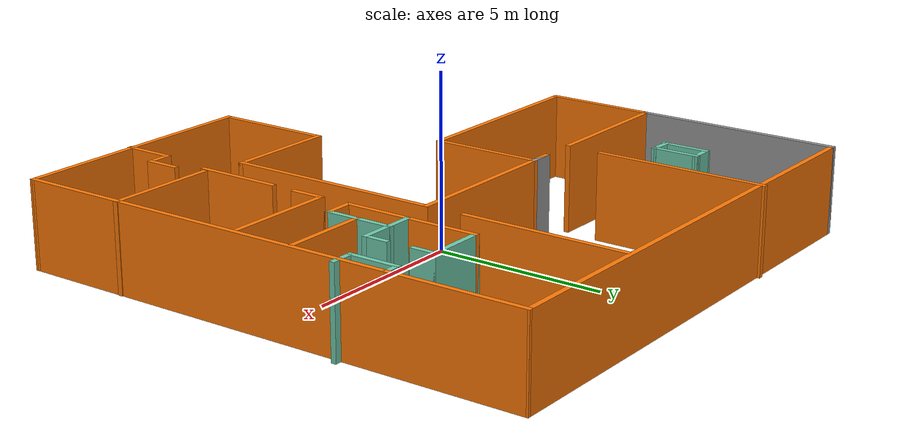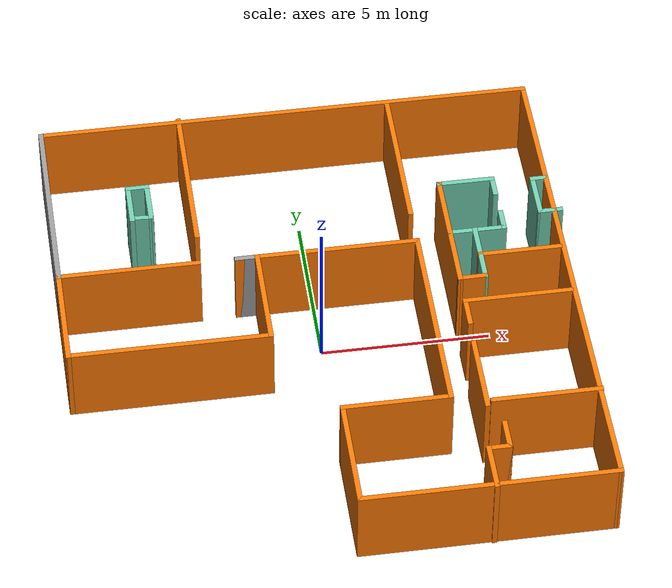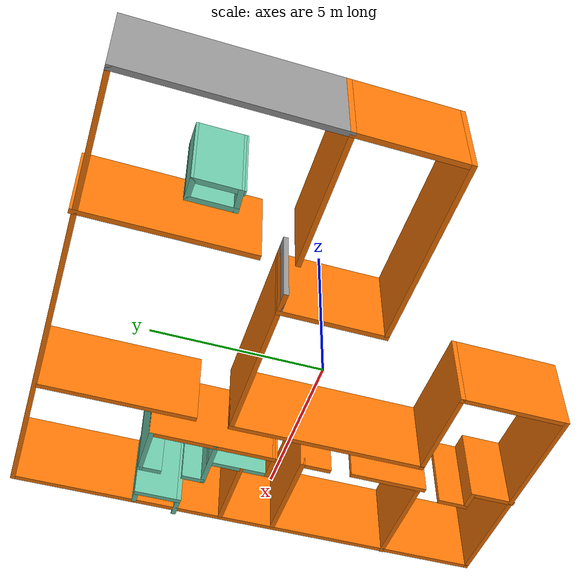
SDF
<?xml version='1.0'?>
<sdf version='1.6'>
  <model name='Home2'>
    <pose frame=''>-0.003197 0.047141 0 0 -0 0</pose>
    <link name='Wall_0'>
      <collision name='Wall_0_Collision'>
        <geometry>
          <box>
            <size>6 0.15 2.5</size>
          </box>
        </geometry>
        <pose frame=''>0 0 1.25 0 -0 0</pose>
      </collision>
      <visual name='Wall_0_Visual'>
        <pose frame=''>0 0 1.25 0 -0 0</pose>
        <geometry>
          <box>
            <size>6 0.15 2.5</size>
          </box>
        </geometry>
        <material>
          <script>
            <uri>file://media/materials/scripts/gazebo.material</uri>
            <name>Gazebo/Grey</name>
          </script>
          <ambient>1 1 1 1</ambient>
        </material>
      </visual>
      <pose frame=''>-7.50279 4.70654 0 0 -0 1.5708</pose>
    </link>
    <link name='Wall_1'>
      <collision name='Wall_1_Collision'>
        <geometry>
          <box>
            <size>0.16 0.15 2.5</size>
          </box>
        </geometry>
        <pose frame=''>0 0 1.25 0 -0 0</pose>
      </collision>
      <visual name='Wall_1_Visual'>
        <pose frame=''>0 0 1.25 0 -0 0</pose>
        <geometry>
          <box>
            <size>0.16 0.15 2.5</size>
          </box>
        </geometry>
        <material>
          <script>
            <uri>file://media/materials/scripts/gazebo.material</uri>
            <name>Gazebo/Grey</name>
          </script>
          <ambient>1 1 1 1</ambient>
        </material>
      </visual>
      <pose frame=''>-7.49779 7.63154 0 0 -0 0</pose>
    </link>
    <link name='Wall_11'>
      <collision name='Wall_11_Collision'>
        <geometry>
          <box>
            <size>4.25 0.15 2.5</size>
          </box>
        </geometry>
        <pose frame=''>0 0 1.25 0 -0 0</pose>
      </collision>
      <visual name='Wall_11_Visual'>
        <pose frame=''>0 0 1.25 0 -0 0</pose>
        <geometry>
          <box>
            <size>4.25 0.15 2.5</size>
          </box>
        </geometry>
        <material>
          <script>
            <uri>file://media/materials/scripts/gazebo.material</uri>
            <name>Gazebo/Grey</name>
          </script>
          <ambient>0.996078 0.47451 0.0196078 1</ambient>
        </material>
      </visual>
      <pose frame=''>-5.4528 1.78154 0 0 -0 0</pose>
    </link>
    <link name='Wall_13'>
      <collision name='Wall_13_Collision'>
        <geometry>
          <box>
            <size>3.25 0.15 2.5</size>
          </box>
        </geometry>
        <pose frame=''>0 0 1.25 0 -0 0</pose>
      </collision>
      <visual name='Wall_13_Visual'>
        <pose frame=''>0 0 1.25 0 -0 0</pose>
        <geometry>
          <box>
            <size>3.25 0.15 2.5</size>
          </box>
        </geometry>
        <material>
          <script>
            <uri>file://media/materials/scripts/gazebo.material</uri>
            <name>Gazebo/Grey</name>
          </script>
          <ambient>0.996078 0.47451 0.0196078 1</ambient>
        </material>
      </visual>
      <pose frame=''>-7.50279 0.231541 0 0 0 -1.5708</pose>
    </link>
    <link name='Wall_16'>
      <collision name='Wall_16_Collision'>
        <geometry>
          <box>
            <size>6 0.15 2.5</size>
          </box>
        </geometry>
        <pose frame=''>0 0 1.25 0 -0 0</pose>
      </collision>
      <visual name='Wall_16_Visual'>
        <pose frame=''>0 0 1.25 0 -0 0</pose>
        <geometry>
          <box>
            <size>6 0.15 2.5</size>
          </box>
        </geometry>
        <material>
          <script>
            <uri>file://media/materials/scripts/gazebo.material</uri>
            <name>Gazebo/Grey</name>
          </script>
          <ambient>0.996078 0.47451 0.0196078 1</ambient>
        </material>
      </visual>
      <pose frame=''>-4.5778 -1.31846 0 0 -0 0</pose>
    </link>
    <link name='Wall_17'>
      <collision name='Wall_17_Collision'>
        <geometry>
          <box>
            <size>3.25 0.15 2.5</size>
          </box>
        </geometry>
        <pose frame=''>0 0 1.25 0 -0 0</pose>
      </collision>
      <visual name='Wall_17_Visual'>
        <pose frame=''>0 0 1.25 0 -0 0</pose>
        <geometry>
          <box>
            <size>3.25 0.15 2.5</size>
          </box>
        </geometry>
        <material>
          <script>
            <uri>file://media/materials/scripts/gazebo.material</uri>
            <name>Gazebo/Grey</name>
          </script>
          <ambient>0.996078 0.47451 0.0196078 1</ambient>
        </material>
      </visual>
      <pose frame=''>-1.6528 0.231541 0 0 -0 1.5708</pose>
    </link>
    <link name='Wall_18'>
      <collision name='Wall_18_Collision'>
        <geometry>
          <box>
            <size>0.75 0.15 2.5</size>
          </box>
        </geometry>
        <pose frame=''>0 0 1.25 0 -0 0</pose>
      </collision>
      <visual name='Wall_18_Visual'>
        <pose frame=''>0 0 1.25 0 -0 0</pose>
        <geometry>
          <box>
            <size>0.75 0.15 2.5</size>
          </box>
        </geometry>
        <material>
          <script>
            <uri>file://media/materials/scripts/gazebo.material</uri>
            <name>Gazebo/Grey</name>
          </script>
          <ambient>1 1 1 1</ambient>
        </material>
      </visual>
      <pose frame=''>-1.9528 1.78154 0 0 -0 3.14159</pose>
    </link>
    <link name='Wall_19'>
      <collision name='Wall_19_Collision'>
        <geometry>
          <box>
            <size>5.5 0.15 2.5</size>
          </box>
        </geometry>
        <pose frame=''>0 0 1.25 0 -0 0</pose>
      </collision>
      <visual name='Wall_19_Visual'>
        <pose frame=''>0 0 1.25 0 -0 0</pose>
        <geometry>
          <box>
            <size>5.5 0.15 2.5</size>
          </box>
        </geometry>
        <material>
          <script>
            <uri>file://media/materials/scripts/gazebo.material</uri>
            <name>Gazebo/Grey</name>
          </script>
          <ambient>0.996078 0.47451 0.0196078 1</ambient>
        </material>
      </visual>
      <pose frame=''>0.422205 1.78154 0 0 -0 0</pose>
    </link>
    <link name='Wall_20'>
      <collision name='Wall_20_Collision'>
        <geometry>
          <box>
            <size>6.25 0.15 2.5</size>
          </box>
        </geometry>
        <pose frame=''>0 0 1.25 0 -0 0</pose>
      </collision>
      <visual name='Wall_20_Visual'>
        <pose frame=''>0 0 1.25 0 -0 0</pose>
        <geometry>
          <box>
            <size>6.25 0.15 2.5</size>
          </box>
        </geometry>
        <material>
          <script>
            <uri>file://media/materials/scripts/gazebo.material</uri>
            <name>Gazebo/Grey</name>
          </script>
          <ambient>0.996078 0.47451 0.0196078 1</ambient>
        </material>
      </visual>
      <pose frame=''>3.09721 -1.26846 0 0 0 -1.5708</pose>
    </link>
    <link name='Wall_21'>
      <collision name='Wall_21_Collision'>
        <geometry>
          <box>
            <size>3.25 0.15 2.5</size>
          </box>
        </geometry>
        <pose frame=''>0 0 1.25 0 -0 0</pose>
      </collision>
      <visual name='Wall_21_Visual'>
        <pose frame=''>0 0 1.25 0 -0 0</pose>
        <geometry>
          <box>
            <size>3.25 0.15 2.5</size>
          </box>
        </geometry>
        <material>
          <script>
            <uri>file://media/materials/scripts/gazebo.material</uri>
            <name>Gazebo/Grey</name>
          </script>
          <ambient>0.996078 0.47451 0.0196078 1</ambient>
        </material>
      </visual>
      <pose frame=''>1.5472 -4.31846 0 0 -0 3.14159</pose>
    </link>
    <link name='Wall_22'>
      <collision name='Wall_22_Collision'>
        <geometry>
          <box>
            <size>3.5 0.15 2.5</size>
          </box>
        </geometry>
        <pose frame=''>0 0 1.25 0 -0 0</pose>
      </collision>
      <visual name='Wall_22_Visual'>
        <pose frame=''>0 0 1.25 0 -0 0</pose>
        <geometry>
          <box>
            <size>3.5 0.15 2.5</size>
          </box>
        </geometry>
        <material>
          <script>
            <uri>file://media/materials/scripts/gazebo.material</uri>
            <name>Gazebo/Grey</name>
          </script>
          <ambient>0.996078 0.47451 0.0196078 1</ambient>
        </material>
      </visual>
      <pose frame=''>-0.002795 -5.99346 0 0 0 -1.5708</pose>
    </link>
    <link name='Wall_23'>
      <collision name='Wall_23_Collision'>
        <geometry>
          <box>
            <size>7.5 0.15 2.5</size>
          </box>
        </geometry>
        <pose frame=''>0 0 1.25 0 -0 0</pose>
      </collision>
      <visual name='Wall_23_Visual'>
        <pose frame=''>0 0 1.25 0 -0 0</pose>
        <geometry>
          <box>
            <size>7.5 0.15 2.5</size>
          </box>
        </geometry>
        <material>
          <script>
            <uri>file://media/materials/scripts/gazebo.material</uri>
            <name>Gazebo/Grey</name>
          </script>
          <ambient>0.996078 0.47451 0.0196078 1</ambient>
        </material>
      </visual>
      <pose frame=''>3.6722 -7.66846 0 0 -0 0</pose>
    </link>
    <link name='Wall_24'>
      <collision name='Wall_24_Collision'>
        <geometry>
          <box>
            <size>15.4501 0.15 2.5</size>
          </box>
        </geometry>
        <pose frame=''>0 0 1.25 0 -0 0</pose>
      </collision>
      <visual name='Wall_24_Visual'>
        <pose frame=''>0 0 1.25 0 -0 0</pose>
        <geometry>
          <box>
            <size>15.4501 0.15 2.5</size>
          </box>
        </geometry>
        <material>
          <script>
            <uri>file://media/materials/scripts/gazebo.material</uri>
            <name>Gazebo/Grey</name>
          </script>
          <ambient>0.996078 0.47451 0.0196078 1</ambient>
        </material>
      </visual>
      <pose frame=''>7.32221 -0.018459 0 0 -0 1.57406</pose>
    </link>
    <link name='Wall_26'>
      <collision name='Wall_26_Collision'>
        <geometry>
          <box>
            <size>1.5 0.15 2.5</size>
          </box>
        </geometry>
        <pose frame=''>0 0 1.25 0 -0 0</pose>
      </collision>
      <visual name='Wall_26_Visual'>
        <pose frame=''>0 0 1.25 0 -0 0</pose>
        <geometry>
          <box>
            <size>1.5 0.15 2.5</size>
          </box>
        </geometry>
        <material>
          <script>
            <uri>file://media/materials/scripts/gazebo.material</uri>
            <name>Gazebo/Grey</name>
          </script>
          <ambient>0.996078 0.47451 0.0196078 1</ambient>
        </material>
      </visual>
      <pose frame=''>3.83526 -7.03317 0 0 -0 1.5708</pose>
    </link>
    <link name='Wall_27'>
      <collision name='Wall_27_Collision'>
        <geometry>
          <box>
            <size>0.75 0.15 2.5</size>
          </box>
        </geometry>
        <pose frame=''>0 0 1.25 0 -0 0</pose>
      </collision>
      <visual name='Wall_27_Visual'>
        <pose frame=''>0 0 1.25 0 -0 0</pose>
        <geometry>
          <box>
            <size>0.75 0.15 2.5</size>
          </box>
        </geometry>
        <material>
          <script>
            <uri>file://media/materials/scripts/gazebo.material</uri>
            <name>Gazebo/Grey</name>
          </script>
          <ambient>0.996078 0.47451 0.0196078 1</ambient>
        </material>
      </visual>
      <pose frame=''>4.13526 -6.35817 0 0 -0 0</pose>
    </link>
    <link name='Wall_28'>
      <collision name='Wall_28_Collision'>
        <geometry>
          <box>
            <size>1 0.15 2.5</size>
          </box>
        </geometry>
        <pose frame=''>0 0 1.25 0 -0 0</pose>
      </collision>
      <visual name='Wall_28_Visual'>
        <pose frame=''>0 0 1.25 0 -0 0</pose>
        <geometry>
          <box>
            <size>1 0.15 2.5</size>
          </box>
        </geometry>
        <material>
          <script>
            <uri>file://media/materials/scripts/gazebo.material</uri>
            <name>Gazebo/Grey</name>
          </script>
          <ambient>0.996078 0.47451 0.0196078 1</ambient>
        </material>
      </visual>
      <pose frame=''>4.43526 -5.93317 0 0 -0 1.5708</pose>
    </link>
    <link name='Wall_30'>
      <collision name='Wall_30_Collision'>
        <geometry>
          <box>
            <size>3.25 0.15 2.5</size>
          </box>
        </geometry>
        <pose frame=''>0 0 1.25 0 -0 0</pose>
      </collision>
      <visual name='Wall_30_Visual'>
        <pose frame=''>0 0 1.25 0 -0 0</pose>
        <geometry>
          <box>
            <size>3.25 0.15 2.5</size>
          </box>
        </geometry>
        <material>
          <script>
            <uri>file://media/materials/scripts/gazebo.material</uri>
            <name>Gazebo/Grey</name>
          </script>
          <ambient>0.996078 0.47451 0.0196078 1</ambient>
        </material>
      </visual>
      <pose frame=''>5.8099 -4.62808 0 0 -0 3.14159</pose>
    </link>
    <link name='Wall_32'>
      <collision name='Wall_32_Collision'>
        <geometry>
          <box>
            <size>2.5 0.15 2.5</size>
          </box>
        </geometry>
        <pose frame=''>0 0 1.25 0 -0 0</pose>
      </collision>
      <visual name='Wall_32_Visual'>
        <pose frame=''>0 0 1.25 0 -0 0</pose>
        <geometry>
          <box>
            <size>2.5 0.15 2.5</size>
          </box>
        </geometry>
        <material>
          <script>
            <uri>file://media/materials/scripts/gazebo.material</uri>
            <name>Gazebo/Grey</name>
          </script>
          <ambient>0.996078 0.47451 0.0196078 1</ambient>
        </material>
      </visual>
      <pose frame=''>4.07341 -3.59621 0 0 0 -1.5708</pose>
    </link>
    <link name='Wall_34'>
      <collision name='Wall_34_Collision'>
        <geometry>
          <box>
            <size>1 0.15 2.5</size>
          </box>
        </geometry>
        <pose frame=''>0 0 1.25 0 -0 0</pose>
      </collision>
      <visual name='Wall_34_Visual'>
        <pose frame=''>0 0 1.25 0 -0 0</pose>
        <geometry>
          <box>
            <size>1 0.15 2.5</size>
          </box>
        </geometry>
        <material>
          <script>
            <uri>file://media/materials/scripts/gazebo.material</uri>
            <name>Gazebo/Grey</name>
          </script>
          <ambient>0.996078 0.47451 0.0196078 1</ambient>
        </material>
      </visual>
      <pose frame=''>4.10517 -1.20237 0 0 -0 1.5708</pose>
    </link>
    <link name='Wall_35'>
      <collision name='Wall_35_Collision'>
        <geometry>
          <box>
            <size>3.25 0.15 2.5</size>
          </box>
        </geometry>
        <pose frame=''>0 0 1.25 0 -0 0</pose>
      </collision>
      <visual name='Wall_35_Visual'>
        <pose frame=''>0 0 1.25 0 -0 0</pose>
        <geometry>
          <box>
            <size>3.25 0.15 2.5</size>
          </box>
        </geometry>
        <material>
          <script>
            <uri>file://media/materials/scripts/gazebo.material</uri>
            <name>Gazebo/Grey</name>
          </script>
          <ambient>0.996078 0.47451 0.0196078 1</ambient>
        </material>
      </visual>
      <pose frame=''>5.65517 -0.777369 0 0 -0 0</pose>
    </link>
    <link name='Wall_37'>
      <collision name='Wall_37_Collision'>
        <geometry>
          <box>
            <size>4 0.15 2.5</size>
          </box>
        </geometry>
        <pose frame=''>0 0 1.25 0 -0 0</pose>
      </collision>
      <visual name='Wall_37_Visual'>
        <pose frame=''>0 0 1.25 0 -0 0</pose>
        <geometry>
          <box>
            <size>4 0.15 2.5</size>
          </box>
        </geometry>
        <material>
          <script>
            <uri>file://media/materials/scripts/gazebo.material</uri>
            <name>Gazebo/Grey</name>
          </script>
          <ambient>0.996078 0.47451 0.0196078 1</ambient>
        </material>
      </visual>
      <pose frame=''>4.10517 2.04408 0 0 -0 1.5708</pose>
    </link>
    <link name='Wall_38'>
      <collision name='Wall_38_Collision'>
        <geometry>
          <box>
            <size>1.75 0.15 2.5</size>
          </box>
        </geometry>
        <pose frame=''>0 0 1.25 0 -0 0</pose>
      </collision>
      <visual name='Wall_38_Visual'>
        <pose frame=''>0 0 1.25 0 -0 0</pose>
        <geometry>
          <box>
            <size>1.75 0.15 2.5</size>
          </box>
        </geometry>
        <material>
          <script>
            <uri>file://media/materials/scripts/gazebo.material</uri>
            <name>Gazebo/Grey</name>
          </script>
          <ambient>0.435294 0.796078 0.67451 1</ambient>
        </material>
      </visual>
      <pose frame=''>4.90517 3.96908 0 0 -0 0</pose>
    </link>
    <link name='Wall_39'>
      <collision name='Wall_39_Collision'>
        <geometry>
          <box>
            <size>0.75 0.15 2.5</size>
          </box>
        </geometry>
        <pose frame=''>0 0 1.25 0 -0 0</pose>
      </collision>
      <visual name='Wall_39_Visual'>
        <pose frame=''>0 0 1.25 0 -0 0</pose>
        <geometry>
          <box>
            <size>0.75 0.15 2.5</size>
          </box>
        </geometry>
        <material>
          <script>
            <uri>file://media/materials/scripts/gazebo.material</uri>
            <name>Gazebo/Grey</name>
          </script>
          <ambient>0.435294 0.796078 0.67451 1</ambient>
        </material>
      </visual>
      <pose frame=''>5.70517 3.66908 0 0 0 -1.5708</pose>
    </link>
    <link name='Wall_4'>
      <collision name='Wall_4_Collision'>
        <geometry>
          <box>
            <size>6 0.15 2.5</size>
          </box>
        </geometry>
        <pose frame=''>0 0 1.25 0 -0 0</pose>
      </collision>
      <visual name='Wall_4_Visual'>
        <pose frame=''>0 0 1.25 0 -0 0</pose>
        <geometry>
          <box>
            <size>6 0.15 2.5</size>
          </box>
        </geometry>
        <material>
          <script>
            <uri>file://media/materials/scripts/gazebo.material</uri>
            <name>Gazebo/Grey</name>
          </script>
          <ambient>0.996078 0.47451 0.0196078 1</ambient>
        </material>
      </visual>
      <pose frame=''>-7.50279 4.70654 0 0 -0 1.5708</pose>
    </link>
    <link name='Wall_41'>
      <collision name='Wall_41_Collision'>
        <geometry>
          <box>
            <size>0.75 0.15 2.5</size>
          </box>
        </geometry>
        <pose frame=''>0 0 1.25 0 -0 0</pose>
      </collision>
      <visual name='Wall_41_Visual'>
        <pose frame=''>0 0 1.25 0 -0 0</pose>
        <geometry>
          <box>
            <size>0.75 0.15 2.5</size>
          </box>
        </geometry>
        <material>
          <script>
            <uri>file://media/materials/scripts/gazebo.material</uri>
            <name>Gazebo/Grey</name>
          </script>
          <ambient>0.435294 0.796078 0.67451 1</ambient>
        </material>
      </visual>
      <pose frame=''>5.7246 2.2641 0 0 0 -1.5708</pose>
    </link>
    <link name='Wall_42'>
      <collision name='Wall_42_Collision'>
        <geometry>
          <box>
            <size>1.75 0.15 2.5</size>
          </box>
        </geometry>
        <pose frame=''>0 0 1.25 0 -0 0</pose>
      </collision>
      <visual name='Wall_42_Visual'>
        <pose frame=''>0 0 1.25 0 -0 0</pose>
        <geometry>
          <box>
            <size>1.75 0.15 2.5</size>
          </box>
        </geometry>
        <material>
          <script>
            <uri>file://media/materials/scripts/gazebo.material</uri>
            <name>Gazebo/Grey</name>
          </script>
          <ambient>0.435294 0.796078 0.67451 1</ambient>
        </material>
      </visual>
      <pose frame=''>4.9246 1.9641 0 0 -0 3.14159</pose>
    </link>
    <link name='Wall_44'>
      <collision name='Wall_44_Collision'>
        <geometry>
          <box>
            <size>2 0.15 2.5</size>
          </box>
        </geometry>
        <pose frame=''>0 0 1.25 0 -0 0</pose>
      </collision>
      <visual name='Wall_44_Visual'>
        <pose frame=''>0 0 1.25 0 -0 0</pose>
        <geometry>
          <box>
            <size>2 0.15 2.5</size>
          </box>
        </geometry>
        <material>
          <script>
            <uri>file://media/materials/scripts/gazebo.material</uri>
            <name>Gazebo/Grey</name>
          </script>
          <ambient>0.435294 0.796078 0.67451 1</ambient>
        </material>
      </visual>
      <pose frame=''>4.85138 1.05166 0 0 0 -1.5708</pose>
    </link>
    <link name='Wall_45'>
      <collision name='Wall_45_Collision'>
        <geometry>
          <box>
            <size>0.896247 0.15 2.5</size>
          </box>
        </geometry>
        <pose frame=''>0 0 1.25 0 -0 0</pose>
      </collision>
      <visual name='Wall_45_Visual'>
        <pose frame=''>0 0 1.25 0 -0 0</pose>
        <geometry>
          <box>
            <size>0.896247 0.15 2.5</size>
          </box>
        </geometry>
        <material>
          <script>
            <uri>file://media/materials/scripts/gazebo.material</uri>
            <name>Gazebo/Grey</name>
          </script>
          <ambient>0.996078 0.47451 0.0196078 1</ambient>
        </material>
      </visual>
      <pose frame=''>4.47827 0.122867 0 0 0 -3.13143</pose>
    </link>
    <link name='Wall_47'>
      <collision name='Wall_47_Collision'>
        <geometry>
          <box>
            <size>2.5 0.15 2.5</size>
          </box>
        </geometry>
        <pose frame=''>0 0 1.25 0 -0 0</pose>
      </collision>
      <visual name='Wall_47_Visual'>
        <pose frame=''>0 0 1.25 0 -0 0</pose>
        <geometry>
          <box>
            <size>2.5 0.15 2.5</size>
          </box>
        </geometry>
        <material>
          <script>
            <uri>file://media/materials/scripts/gazebo.material</uri>
            <name>Gazebo/Grey</name>
          </script>
          <ambient>0.996078 0.47451 0.0196078 1</ambient>
        </material>
      </visual>
      <pose frame=''>6.02638 0.976421 0 0 -0 0</pose>
    </link>
    <link name='Wall_49'>
      <collision name='Wall_49_Collision'>
        <geometry>
          <box>
            <size>0.75 0.15 2.5</size>
          </box>
        </geometry>
        <pose frame=''>0 0 1.25 0 -0 0</pose>
      </collision>
      <visual name='Wall_49_Visual'>
        <pose frame=''>0 0 1.25 0 -0 0</pose>
        <geometry>
          <box>
            <size>0.75 0.15 2.5</size>
          </box>
        </geometry>
        <material>
          <script>
            <uri>file://media/materials/scripts/gazebo.material</uri>
            <name>Gazebo/Grey</name>
          </script>
          <ambient>0.435294 0.796078 0.67451 1</ambient>
        </material>
      </visual>
      <pose frame=''>7.2028 2.45296 0 0 -0 3.14159</pose>
    </link>
    <link name='Wall_50'>
      <collision name='Wall_50_Collision'>
        <geometry>
          <box>
            <size>1.5 0.15 2.5</size>
          </box>
        </geometry>
        <pose frame=''>0 0 1.25 0 -0 0</pose>
      </collision>
      <visual name='Wall_50_Visual'>
        <pose frame=''>0 0 1.25 0 -0 0</pose>
        <geometry>
          <box>
            <size>1.5 0.15 2.5</size>
          </box>
        </geometry>
        <material>
          <script>
            <uri>file://media/materials/scripts/gazebo.material</uri>
            <name>Gazebo/Grey</name>
          </script>
          <ambient>0.435294 0.796078 0.67451 1</ambient>
        </material>
      </visual>
      <pose frame=''>6.9028 3.12796 0 0 -0 1.5708</pose>
    </link>
    <link name='Wall_51'>
      <collision name='Wall_51_Collision'>
        <geometry>
          <box>
            <size>0.5 0.15 2.5</size>
          </box>
        </geometry>
        <pose frame=''>0 0 1.25 0 -0 0</pose>
      </collision>
      <visual name='Wall_51_Visual'>
        <pose frame=''>0 0 1.25 0 -0 0</pose>
        <geometry>
          <box>
            <size>0.5 0.15 2.5</size>
          </box>
        </geometry>
        <material>
          <script>
            <uri>file://media/materials/scripts/gazebo.material</uri>
            <name>Gazebo/Grey</name>
          </script>
          <ambient>0.435294 0.796078 0.67451 1</ambient>
        </material>
      </visual>
      <pose frame=''>7.0778 3.80296 0 0 -0 0</pose>
    </link>
    <link name='Wall_53'>
      <collision name='Wall_53_Collision'>
        <geometry>
          <box>
            <size>4.75 0.15 2.5</size>
          </box>
        </geometry>
        <pose frame=''>0 0 1.25 0 -0 0</pose>
      </collision>
      <visual name='Wall_53_Visual'>
        <pose frame=''>0 0 1.25 0 -0 0</pose>
        <geometry>
          <box>
            <size>4.75 0.15 2.5</size>
          </box>
        </geometry>
        <material>
          <script>
            <uri>file://media/materials/scripts/gazebo.material</uri>
            <name>Gazebo/Grey</name>
          </script>
          <ambient>0.996078 0.47451 0.0196078 1</ambient>
        </material>
      </visual>
      <pose frame=''>3.07318 5.21339 0 0 -0 1.5708</pose>
    </link>
    <link name='Wall_56'>
      <collision name='Wall_56_Collision'>
        <geometry>
          <box>
            <size>1.42359 0.15 2.5</size>
          </box>
        </geometry>
        <pose frame=''>0 0 1.25 0 -0 0</pose>
      </collision>
      <visual name='Wall_56_Visual'>
        <pose frame=''>0 0 1.25 0 -0 0</pose>
        <geometry>
          <box>
            <size>1.42359 0.15 2.5</size>
          </box>
        </geometry>
        <material>
          <script>
            <uri>file://media/materials/scripts/gazebo.material</uri>
            <name>Gazebo/Grey</name>
          </script>
          <ambient>0.435294 0.796078 0.67451 1</ambient>
        </material>
      </visual>
      <pose frame=''>-5.12885 4.41877 0 0 -0 1.5708</pose>
    </link>
    <link name='Wall_57'>
      <collision name='Wall_57_Collision'>
        <geometry>
          <box>
            <size>0.713815 0.15 2.5</size>
          </box>
        </geometry>
        <pose frame=''>0 0 1.25 0 -0 0</pose>
      </collision>
      <visual name='Wall_57_Visual'>
        <pose frame=''>0 0 1.25 0 -0 0</pose>
        <geometry>
          <box>
            <size>0.713815 0.15 2.5</size>
          </box>
        </geometry>
        <material>
          <script>
            <uri>file://media/materials/scripts/gazebo.material</uri>
            <name>Gazebo/Grey</name>
          </script>
          <ambient>0.435294 0.796078 0.67451 1</ambient>
        </material>
      </visual>
      <pose frame=''>-4.84699 5.06079 0 0 -0 0.018516</pose>
    </link>
    <link name='Wall_58'>
      <collision name='Wall_58_Collision'>
        <geometry>
          <box>
            <size>1.41315 0.15 2.5</size>
          </box>
        </geometry>
        <pose frame=''>0 0 1.25 0 -0 0</pose>
      </collision>
      <visual name='Wall_58_Visual'>
        <pose frame=''>0 0 1.25 0 -0 0</pose>
        <geometry>
          <box>
            <size>1.41315 0.15 2.5</size>
          </box>
        </geometry>
        <material>
          <script>
            <uri>file://media/materials/scripts/gazebo.material</uri>
            <name>Gazebo/Grey</name>
          </script>
          <ambient>0.435294 0.796078 0.67451 1</ambient>
        </material>
      </visual>
      <pose frame=''>-4.56513 4.43443 0 0 0 -1.5708</pose>
    </link>
    <link name='Wall_59'>
      <collision name='Wall_59_Collision'>
        <geometry>
          <box>
            <size>0.714105 0.15 2.5</size>
          </box>
        </geometry>
        <pose frame=''>0 0 1.25 0 -0 0</pose>
      </collision>
      <visual name='Wall_59_Visual'>
        <pose frame=''>0 0 1.25 0 -0 0</pose>
        <geometry>
          <box>
            <size>0.714105 0.15 2.5</size>
          </box>
        </geometry>
        <material>
          <script>
            <uri>file://media/materials/scripts/gazebo.material</uri>
            <name>Gazebo/Grey</name>
          </script>
          <ambient>0.435294 0.796078 0.67451 1</ambient>
        </material>
      </visual>
      <pose frame=''>-4.84699 3.81852 0 0 -0 3.08609</pose>
    </link>
    <link name='Wall_6'>
      <collision name='Wall_6_Collision'>
        <geometry>
          <box>
            <size>14.95 0.15 2.5</size>
          </box>
        </geometry>
        <pose frame=''>0 0 1.25 0 -0 0</pose>
      </collision>
      <visual name='Wall_6_Visual'>
        <pose frame=''>0 0 1.25 0 -0 0</pose>
        <geometry>
          <box>
            <size>14.95 0.15 2.5</size>
          </box>
        </geometry>
        <material>
          <script>
            <uri>file://media/materials/scripts/gazebo.material</uri>
            <name>Gazebo/Grey</name>
          </script>
          <ambient>0.996078 0.47451 0.0196078 1</ambient>
        </material>
      </visual>
      <pose frame=''>-0.102795 7.63154 0 0 -0 0</pose>
    </link>
    <link name='Wall_9'>
      <collision name='Wall_9_Collision'>
        <geometry>
          <box>
            <size>5 0.15 2.5</size>
          </box>
        </geometry>
        <pose frame=''>0 0 1.25 0 -0 0</pose>
      </collision>
      <visual name='Wall_9_Visual'>
        <pose frame=''>0 0 1.25 0 -0 0</pose>
        <geometry>
          <box>
            <size>5 0.15 2.5</size>
          </box>
        </geometry>
        <material>
          <script>
            <uri>file://media/materials/scripts/gazebo.material</uri>
            <name>Gazebo/Grey</name>
          </script>
          <ambient>0.996078 0.47451 0.0196078 1</ambient>
        </material>
      </visual>
      <pose frame=''>-3.30928 5.28317 0 0 0 -1.5708</pose>
    </link>
    <static>1</static>
  </model>
</sdf>
